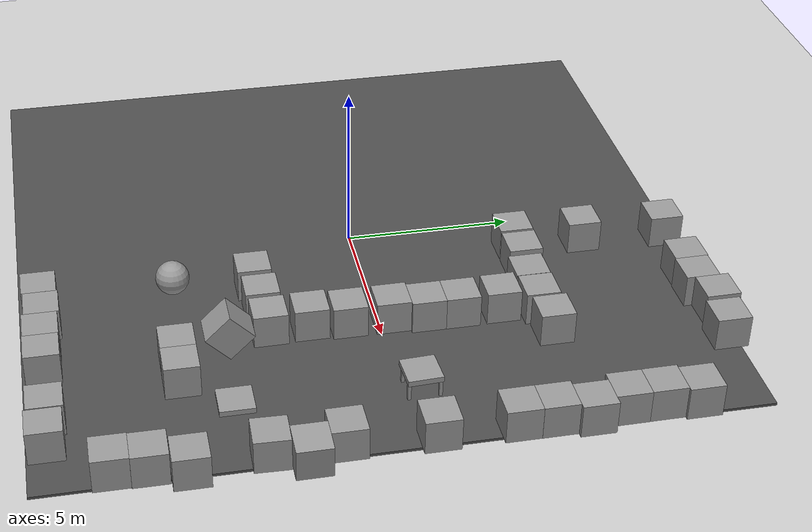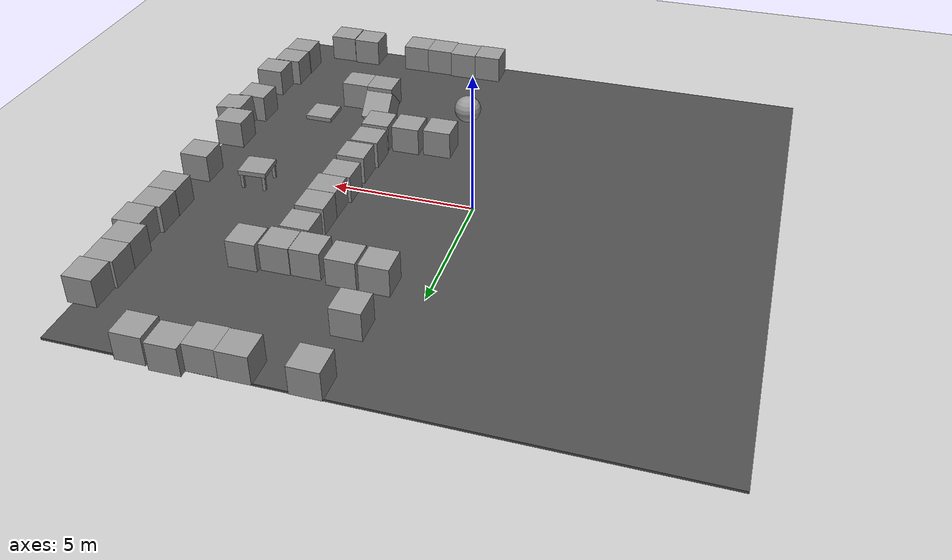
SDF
<sdf version="1.6">
 <world name="default">
  <model name="ground_plane">
   <static>1</static>
   <link name="link">
    <collision name="collision">
     <geometry><plane><normal>0 0 1</normal><size>100 100</size></plane></geometry>
     <surface><friction><ode><mu>100</mu><mu2>50</mu2></ode></friction></surface>
    </collision>
    <visual name="visual">
     <cast_shadows>0</cast_shadows>
     <geometry><plane><normal>0 0 1</normal><size>100 100</size></plane></geometry>
     <material>
      <script><uri>file://media/materials/scripts/gazebo.material</uri><name>Gazebo/Grey</name></script>
     </material>
    </visual>
   </link>
  </model>
  <model name="asphalt_plane">
   <static>1</static>
   <link name="link">
    <collision name="collision"><geometry><box><size>20 20 0.1</size></box></geometry></collision>
    <visual name="visual">
     <cast_shadows>0</cast_shadows>
     <geometry><box><size>20 20 0.1</size></box></geometry>
     <material>
      <script>
       <uri>model://asphalt_plane/materials/scripts</uri>
       <uri>model://asphalt_plane/materials/textures</uri>
       <name>vrc/asphalt</name>
      </script>
     </material>
    </visual>
   </link>
   <pose>0.023839 -0.146036 0 0 -0 0</pose>
  </model>
  <model name="unit_box_1_clone_15">
   <pose>2.09212 -9.51207 0.549996 9e-06 -0 0.000929</pose>
   <link name="link">
    <inertial>
     <mass>1</mass>
     <inertia>
      <ixx>0.166667</ixx>
      <ixy>0</ixy>
      <ixz>0</ixz>
      <iyy>0.166667</iyy>
      <iyz>0</iyz>
      <izz>0.166667</izz>
     </inertia>
    </inertial>
    <collision name="collision"><geometry><box><size>1 1 1</size></box></geometry></collision>
    <visual name="visual">
     <geometry><box><size>1 1 1</size></box></geometry>
     <material>
      <script><name>Gazebo/Grey</name><uri>file://media/materials/scripts/gazebo.material</uri></script>
     </material>
    </visual>
   </link>
  </model>
  <model name="unit_box_1_clone_16">
   <pose>3.09306 -9.47292 0.549996 9e-06 -0 -0.000398</pose>
   <link name="link">
    <inertial>
     <mass>1</mass>
     <inertia>
      <ixx>0.166667</ixx>
      <ixy>0</ixy>
      <ixz>0</ixz>
      <iyy>0.166667</iyy>
      <iyz>0</iyz>
      <izz>0.166667</izz>
     </inertia>
    </inertial>
    <collision name="collision"><geometry><box><size>1 1 1</size></box></geometry></collision>
    <visual name="visual">
     <geometry><box><size>1 1 1</size></box></geometry>
     <material>
      <script><name>Gazebo/Grey</name><uri>file://media/materials/scripts/gazebo.material</uri></script>
     </material>
    </visual>
   </link>
  </model>
  <model name="unit_box_1_clone_17">
   <pose>4.09327 -9.53323 0.549996 9e-06 -0 -0.000767</pose>
   <link name="link">
    <inertial>
     <mass>1</mass>
     <inertia>
      <ixx>0.166667</ixx>
      <ixy>0</ixy>
      <ixz>0</ixz>
      <iyy>0.166667</iyy>
      <iyz>0</iyz>
      <izz>0.166667</izz>
     </inertia>
    </inertial>
    <collision name="collision"><geometry><box><size>1 1 1</size></box></geometry></collision>
    <visual name="visual">
     <geometry><box><size>1 1 1</size></box></geometry>
     <material>
      <script><name>Gazebo/Grey</name><uri>file://media/materials/scripts/gazebo.material</uri></script>
     </material>
    </visual>
   </link>
  </model>
  <model name="unit_box_1_clone_18">
   <pose>5.09332 -9.54521 0.549996 9e-06 -0 -0.000875</pose>
   <link name="link">
    <inertial>
     <mass>1</mass>
     <inertia>
      <ixx>0.166667</ixx>
      <ixy>0</ixy>
      <ixz>0</ixz>
      <iyy>0.166667</iyy>
      <iyz>0</iyz>
      <izz>0.166667</izz>
     </inertia>
    </inertial>
    <collision name="collision"><geometry><box><size>1 1 1</size></box></geometry></collision>
    <visual name="visual">
     <geometry><box><size>1 1 1</size></box></geometry>
     <material>
      <script><name>Gazebo/Grey</name><uri>file://media/materials/scripts/gazebo.material</uri></script>
     </material>
    </visual>
   </link>
  </model>
  <model name="unit_box_1_clone_19">
   <pose>7.27243 -9.54386 0.549996 9e-06 -0 6.2e-05</pose>
   <link name="link">
    <inertial>
     <mass>1</mass>
     <inertia>
      <ixx>0.166667</ixx>
      <ixy>0</ixy>
      <ixz>0</ixz>
      <iyy>0.166667</iyy>
      <iyz>0</iyz>
      <izz>0.166667</izz>
     </inertia>
    </inertial>
    <collision name="collision"><geometry><box><size>1 1 1</size></box></geometry></collision>
    <visual name="visual">
     <geometry><box><size>1 1 1</size></box></geometry>
     <material>
      <script><name>Gazebo/Grey</name><uri>file://media/materials/scripts/gazebo.material</uri></script>
     </material>
    </visual>
   </link>
  </model>
  <model name="unit_box_1_clone_20">
   <pose>8.30474 -9.59831 0.549996 9e-06 -0 6.2e-05</pose>
   <link name="link">
    <inertial>
     <mass>1</mass>
     <inertia>
      <ixx>0.166667</ixx>
      <ixy>0</ixy>
      <ixz>0</ixz>
      <iyy>0.166667</iyy>
      <iyz>0</iyz>
      <izz>0.166667</izz>
     </inertia>
    </inertial>
    <collision name="collision"><geometry><box><size>1 1 1</size></box></geometry></collision>
    <visual name="visual">
     <geometry><box><size>1 1 1</size></box></geometry>
     <material>
      <script><name>Gazebo/Grey</name><uri>file://media/materials/scripts/gazebo.material</uri></script>
     </material>
    </visual>
   </link>
  </model>
  <model name="unit_box_1_clone_21">
   <pose>9.65896 -8.02131 0.55 0 0 -0.004066</pose>
   <link name="link">
    <inertial>
     <mass>1</mass>
     <inertia>
      <ixx>0.166667</ixx>
      <ixy>0</ixy>
      <ixz>0</ixz>
      <iyy>0.166667</iyy>
      <iyz>0</iyz>
      <izz>0.166667</izz>
     </inertia>
    </inertial>
    <collision name="collision"><geometry><box><size>1 1 1</size></box></geometry></collision>
    <visual name="visual">
     <geometry><box><size>1 1 1</size></box></geometry>
     <material>
      <script><name>Gazebo/Grey</name><uri>file://media/materials/scripts/gazebo.material</uri></script>
     </material>
    </visual>
   </link>
  </model>
  <model name="unit_box_1_clone_22">
   <pose>9.69096 -7.0214 0.549996 0 9e-06 -0.004069</pose>
   <link name="link">
    <inertial>
     <mass>1</mass>
     <inertia>
      <ixx>0.166667</ixx>
      <ixy>0</ixy>
      <ixz>0</ixz>
      <iyy>0.166667</iyy>
      <iyz>0</iyz>
      <izz>0.166667</izz>
     </inertia>
    </inertial>
    <collision name="collision"><geometry><box><size>1 1 1</size></box></geometry></collision>
    <visual name="visual">
     <geometry><box><size>1 1 1</size></box></geometry>
     <material>
      <script><name>Gazebo/Grey</name><uri>file://media/materials/scripts/gazebo.material</uri></script>
     </material>
    </visual>
   </link>
  </model>
  <model name="unit_box_1_clone_23">
   <pose>10 -6 0.549999 2e-06 -0 -1.1e-05</pose>
   <link name="link">
    <inertial>
     <mass>1</mass>
     <inertia>
      <ixx>0.166667</ixx>
      <ixy>0</ixy>
      <ixz>0</ixz>
      <iyy>0.166667</iyy>
      <iyz>0</iyz>
      <izz>0.166667</izz>
     </inertia>
    </inertial>
    <collision name="collision"><geometry><box><size>1 1 1</size></box></geometry></collision>
    <visual name="visual">
     <geometry><box><size>1 1 1</size></box></geometry>
     <material>
      <script><name>Gazebo/Grey</name><uri>file://media/materials/scripts/gazebo.material</uri></script>
     </material>
    </visual>
   </link>
  </model>
  <model name="unit_box_1_clone_24">
   <pose>9.71569 -3.89853 0.55 0 0 -0.031692</pose>
   <link name="link">
    <inertial>
     <mass>1</mass>
     <inertia>
      <ixx>0.166667</ixx>
      <ixy>0</ixy>
      <ixz>0</ixz>
      <iyy>0.166667</iyy>
      <iyz>0</iyz>
      <izz>0.166667</izz>
     </inertia>
    </inertial>
    <collision name="collision"><geometry><box><size>1 1 1</size></box></geometry></collision>
    <visual name="visual">
     <geometry><box><size>1 1 1</size></box></geometry>
     <material>
      <script><name>Gazebo/Grey</name><uri>file://media/materials/scripts/gazebo.material</uri></script>
     </material>
    </visual>
   </link>
  </model>
  <model name="unit_box_1_clone_25">
   <pose>10.1525 -2.89312 0.540837 0.000252 0.085144 0.002965</pose>
   <link name="link">
    <inertial>
     <mass>1</mass>
     <inertia>
      <ixx>0.166667</ixx>
      <ixy>0</ixy>
      <ixz>0</ixz>
      <iyy>0.166667</iyy>
      <iyz>0</iyz>
      <izz>0.166667</izz>
     </inertia>
    </inertial>
    <collision name="collision"><geometry><box><size>1 1 1</size></box></geometry></collision>
    <visual name="visual">
     <geometry><box><size>1 1 1</size></box></geometry>
     <material>
      <script><name>Gazebo/Grey</name><uri>file://media/materials/scripts/gazebo.material</uri></script>
     </material>
    </visual>
   </link>
  </model>
  <model name="unit_box_1_clone_26">
   <pose>9.68456 -1.89437 0.549999 -2e-06 3e-06 0.002944</pose>
   <link name="link">
    <inertial>
     <mass>1</mass>
     <inertia>
      <ixx>0.166667</ixx>
      <ixy>0</ixy>
      <ixz>0</ixz>
      <iyy>0.166667</iyy>
      <iyz>0</iyz>
      <izz>0.166667</izz>
     </inertia>
    </inertial>
    <collision name="collision"><geometry><box><size>1 1 1</size></box></geometry></collision>
    <visual name="visual">
     <geometry><box><size>1 1 1</size></box></geometry>
     <material>
      <script><name>Gazebo/Grey</name><uri>file://media/materials/scripts/gazebo.material</uri></script>
     </material>
    </visual>
   </link>
  </model>
  <model name="unit_box_1_clone_27">
   <pose>9.76856 0.548242 0.55 0 -0 3.5e-05</pose>
   <link name="link">
    <inertial>
     <mass>1</mass>
     <inertia>
      <ixx>0.166667</ixx>
      <ixy>0</ixy>
      <ixz>0</ixz>
      <iyy>0.166667</iyy>
      <iyz>0</iyz>
      <izz>0.166667</izz>
     </inertia>
    </inertial>
    <collision name="collision"><geometry><box><size>1 1 1</size></box></geometry></collision>
    <visual name="visual">
     <geometry><box><size>1 1 1</size></box></geometry>
     <material>
      <script><name>Gazebo/Grey</name><uri>file://media/materials/scripts/gazebo.material</uri></script>
     </material>
    </visual>
   </link>
  </model>
  <model name="unit_box_1_clone_28">
   <pose>9.74804 2.72075 0.549994 -4e-06 8e-06 0.004111</pose>
   <link name="link">
    <inertial>
     <mass>1</mass>
     <inertia>
      <ixx>0.166667</ixx>
      <ixy>0</ixy>
      <ixz>0</ixz>
      <iyy>0.166667</iyy>
      <iyz>0</iyz>
      <izz>0.166667</izz>
     </inertia>
    </inertial>
    <collision name="collision"><geometry><box><size>1 1 1</size></box></geometry></collision>
    <visual name="visual">
     <geometry><box><size>1 1 1</size></box></geometry>
     <material>
      <script><name>Gazebo/Grey</name><uri>file://media/materials/scripts/gazebo.material</uri></script>
     </material>
    </visual>
   </link>
  </model>
  <model name="unit_box_1_clone_29">
   <pose>9.74822 3.72077 0.549994 -4e-06 8e-06 0.004107</pose>
   <link name="link">
    <inertial>
     <mass>1</mass>
     <inertia>
      <ixx>0.166667</ixx>
      <ixy>0</ixy>
      <ixz>0</ixz>
      <iyy>0.166667</iyy>
      <iyz>0</iyz>
      <izz>0.166667</izz>
     </inertia>
    </inertial>
    <collision name="collision"><geometry><box><size>1 1 1</size></box></geometry></collision>
    <visual name="visual">
     <geometry><box><size>1 1 1</size></box></geometry>
     <material>
      <script><name>Gazebo/Grey</name><uri>file://media/materials/scripts/gazebo.material</uri></script>
     </material>
    </visual>
   </link>
  </model>
  <model name="unit_box_1_clone_30">
   <pose>9.88777 4.72138 0.549997 5e-06 -1e-06 0.004127</pose>
   <link name="link">
    <inertial>
     <mass>1</mass>
     <inertia>
      <ixx>0.166667</ixx>
      <ixy>0</ixy>
      <ixz>0</ixz>
      <iyy>0.166667</iyy>
      <iyz>0</iyz>
      <izz>0.166667</izz>
     </inertia>
    </inertial>
    <collision name="collision"><geometry><box><size>1 1 1</size></box></geometry></collision>
    <visual name="visual">
     <geometry><box><size>1 1 1</size></box></geometry>
     <material>
      <script><name>Gazebo/Grey</name><uri>file://media/materials/scripts/gazebo.material</uri></script>
     </material>
    </visual>
   </link>
  </model>
  <model name="unit_box_1_clone_31">
   <pose>9.63354 5.72049 0.55 0 -0 0.004242</pose>
   <link name="link">
    <inertial>
     <mass>1</mass>
     <inertia>
      <ixx>0.166667</ixx>
      <ixy>0</ixy>
      <ixz>0</ixz>
      <iyy>0.166667</iyy>
      <iyz>0</iyz>
      <izz>0.166667</izz>
     </inertia>
    </inertial>
    <collision name="collision"><geometry><box><size>1 1 1</size></box></geometry></collision>
    <visual name="visual">
     <geometry><box><size>1 1 1</size></box></geometry>
     <material>
      <script><name>Gazebo/Grey</name><uri>file://media/materials/scripts/gazebo.material</uri></script>
     </material>
    </visual>
   </link>
  </model>
  <model name="unit_box_1_clone_32">
   <pose>9.62456 6.72048 0.549996 0 -9e-06 0.004241</pose>
   <link name="link">
    <inertial>
     <mass>1</mass>
     <inertia>
      <ixx>0.166667</ixx>
      <ixy>0</ixy>
      <ixz>0</ixz>
      <iyy>0.166667</iyy>
      <iyz>0</iyz>
      <izz>0.166667</izz>
     </inertia>
    </inertial>
    <collision name="collision"><geometry><box><size>1 1 1</size></box></geometry></collision>
    <visual name="visual">
     <geometry><box><size>1 1 1</size></box></geometry>
     <material>
      <script><name>Gazebo/Grey</name><uri>file://media/materials/scripts/gazebo.material</uri></script>
     </material>
    </visual>
   </link>
  </model>
  <model name="unit_box_1_clone_33">
   <pose>9.71779 7.72092 0.549996 0 8e-06 0.004295</pose>
   <link name="link">
    <inertial>
     <mass>1</mass>
     <inertia>
      <ixx>0.166667</ixx>
      <ixy>0</ixy>
      <ixz>0</ixz>
      <iyy>0.166667</iyy>
      <iyz>0</iyz>
      <izz>0.166667</izz>
     </inertia>
    </inertial>
    <collision name="collision"><geometry><box><size>1 1 1</size></box></geometry></collision>
    <visual name="visual">
     <geometry><box><size>1 1 1</size></box></geometry>
     <material>
      <script><name>Gazebo/Grey</name><uri>file://media/materials/scripts/gazebo.material</uri></script>
     </material>
    </visual>
   </link>
  </model>
  <model name="unit_box_1_clone_34">
   <pose>6.9999 9.55273 0.549999 0 2e-06 0.000429</pose>
   <link name="link">
    <inertial>
     <mass>1</mass>
     <inertia>
      <ixx>0.166667</ixx>
      <ixy>0</ixy>
      <ixz>0</ixz>
      <iyy>0.166667</iyy>
      <iyz>0</iyz>
      <izz>0.166667</izz>
     </inertia>
    </inertial>
    <collision name="collision"><geometry><box><size>1 1 1</size></box></geometry></collision>
    <visual name="visual">
     <geometry><box><size>1 1 1</size></box></geometry>
     <material>
      <script><name>Gazebo/Grey</name><uri>file://media/materials/scripts/gazebo.material</uri></script>
     </material>
    </visual>
   </link>
  </model>
  <model name="unit_box_1_clone_35">
   <pose>5.84877 9.67114 0.549996 3e-06 7e-06 0.011102</pose>
   <link name="link">
    <inertial>
     <mass>1</mass>
     <inertia>
      <ixx>0.166667</ixx>
      <ixy>0</ixy>
      <ixz>0</ixz>
      <iyy>0.166667</iyy>
      <iyz>0</iyz>
      <izz>0.166667</izz>
     </inertia>
    </inertial>
    <collision name="collision"><geometry><box><size>1 1 1</size></box></geometry></collision>
    <visual name="visual">
     <geometry><box><size>1 1 1</size></box></geometry>
     <material>
      <script><name>Gazebo/Grey</name><uri>file://media/materials/scripts/gazebo.material</uri></script>
     </material>
    </visual>
   </link>
  </model>
  <model name="unit_box_1_clone_36">
   <pose>4.85147 9.42217 0.55 0 -0 0.011103</pose>
   <link name="link">
    <inertial>
     <mass>1</mass>
     <inertia>
      <ixx>0.166667</ixx>
      <ixy>0</ixy>
      <ixz>0</ixz>
      <iyy>0.166667</iyy>
      <iyz>0</iyz>
      <izz>0.166667</izz>
     </inertia>
    </inertial>
    <collision name="collision"><geometry><box><size>1 1 1</size></box></geometry></collision>
    <visual name="visual">
     <geometry><box><size>1 1 1</size></box></geometry>
     <material>
      <script><name>Gazebo/Grey</name><uri>file://media/materials/scripts/gazebo.material</uri></script>
     </material>
    </visual>
   </link>
  </model>
  <model name="unit_box_1_clone_37">
   <pose>3.85126 9.43365 0.549988 1e-06 6e-06 0.011059</pose>
   <link name="link">
    <inertial>
     <mass>1</mass>
     <inertia>
      <ixx>0.166667</ixx>
      <ixy>0</ixy>
      <ixz>0</ixz>
      <iyy>0.166667</iyy>
      <iyz>0</iyz>
      <izz>0.166667</izz>
     </inertia>
    </inertial>
    <collision name="collision"><geometry><box><size>1 1 1</size></box></geometry></collision>
    <visual name="visual">
     <geometry><box><size>1 1 1</size></box></geometry>
     <material>
      <script><name>Gazebo/Grey</name><uri>file://media/materials/scripts/gazebo.material</uri></script>
     </material>
    </visual>
   </link>
  </model>
  <model name="unit_box_1_clone_38">
   <pose>1.74504 9.44139 0.549997 -7e-06 2e-06 -0.000691</pose>
   <link name="link">
    <inertial>
     <mass>1</mass>
     <inertia>
      <ixx>0.166667</ixx>
      <ixy>0</ixy>
      <ixz>0</ixz>
      <iyy>0.166667</iyy>
      <iyz>0</iyz>
      <izz>0.166667</izz>
     </inertia>
    </inertial>
    <collision name="collision"><geometry><box><size>1 1 1</size></box></geometry></collision>
    <visual name="visual">
     <geometry><box><size>1 1 1</size></box></geometry>
     <material>
      <script><name>Gazebo/Grey</name><uri>file://media/materials/scripts/gazebo.material</uri></script>
     </material>
    </visual>
   </link>
  </model>
  <model name="unit_sphere_0">
   <pose>1.87814 -5.638 0.55 0 -0 0</pose>
   <link name="link">
    <inertial>
     <mass>1</mass>
     <inertia><ixx>0.1</ixx><ixy>0</ixy><ixz>0</ixz><iyy>0.1</iyy><iyz>0</iyz><izz>0.1</izz></inertia>
    </inertial>
    <collision name="collision"><geometry><sphere><radius>0.5</radius></sphere></geometry></collision>
    <visual name="visual">
     <geometry><sphere><radius>0.5</radius></sphere></geometry>
     <material>
      <script><name>Gazebo/Grey</name><uri>file://media/materials/scripts/gazebo.material</uri></script>
     </material>
    </visual>
   </link>
  </model>
  <model name="unit_box_1_clone_62">
   <pose>5.91435 4.77864 0.55 0 -0 2.7e-05</pose>
   <link name="link">
    <inertial>
     <mass>1</mass>
     <inertia>
      <ixx>0.166667</ixx>
      <ixy>0</ixy>
      <ixz>0</ixz>
      <iyy>0.166667</iyy>
      <iyz>0</iyz>
      <izz>0.166667</izz>
     </inertia>
    </inertial>
    <collision name="collision"><geometry><box><size>1 1 1</size></box></geometry></collision>
    <visual name="visual">
     <geometry><box><size>1 1 1</size></box></geometry>
     <material>
      <script><name>Gazebo/Grey</name><uri>file://media/materials/scripts/gazebo.material</uri></script>
     </material>
    </visual>
   </link>
  </model>
  <model name="unit_box_1_clone_63">
   <pose>4.85312 4.64949 0.55 0 -0 2.6e-05</pose>
   <link name="link">
    <inertial>
     <mass>1</mass>
     <inertia>
      <ixx>0.166667</ixx>
      <ixy>0</ixy>
      <ixz>0</ixz>
      <iyy>0.166667</iyy>
      <iyz>0</iyz>
      <izz>0.166667</izz>
     </inertia>
    </inertial>
    <collision name="collision"><geometry><box><size>1 1 1</size></box></geometry></collision>
    <visual name="visual">
     <geometry><box><size>1 1 1</size></box></geometry>
     <material>
      <script><name>Gazebo/Grey</name><uri>file://media/materials/scripts/gazebo.material</uri></script>
     </material>
    </visual>
   </link>
  </model>
  <model name="unit_box_1_clone_64">
   <pose>3.84504 4.62631 0.55 0 -0 2.6e-05</pose>
   <link name="link">
    <inertial>
     <mass>1</mass>
     <inertia>
      <ixx>0.166667</ixx>
      <ixy>0</ixy>
      <ixz>0</ixz>
      <iyy>0.166667</iyy>
      <iyz>0</iyz>
      <izz>0.166667</izz>
     </inertia>
    </inertial>
    <collision name="collision"><geometry><box><size>1 1 1</size></box></geometry></collision>
    <visual name="visual">
     <geometry><box><size>1 1 1</size></box></geometry>
     <material>
      <script><name>Gazebo/Grey</name><uri>file://media/materials/scripts/gazebo.material</uri></script>
     </material>
    </visual>
   </link>
  </model>
  <model name="unit_box_1_clone_65">
   <pose>2.62501 4.76337 0.55 0 -0 2.5e-05</pose>
   <link name="link">
    <inertial>
     <mass>1</mass>
     <inertia>
      <ixx>0.166667</ixx>
      <ixy>0</ixy>
      <ixz>0</ixz>
      <iyy>0.166667</iyy>
      <iyz>0</iyz>
      <izz>0.166667</izz>
     </inertia>
    </inertial>
    <collision name="collision"><geometry><box><size>1 1 1</size></box></geometry></collision>
    <visual name="visual">
     <geometry><box><size>1 1 1</size></box></geometry>
     <material>
      <script><name>Gazebo/Grey</name><uri>file://media/materials/scripts/gazebo.material</uri></script>
     </material>
    </visual>
   </link>
  </model>
  <model name="unit_box_1_clone_66">
   <pose>1.53689 4.76735 0.55 0 -0 2.5e-05</pose>
   <link name="link">
    <inertial>
     <mass>1</mass>
     <inertia>
      <ixx>0.166667</ixx>
      <ixy>0</ixy>
      <ixz>0</ixz>
      <iyy>0.166667</iyy>
      <iyz>0</iyz>
      <izz>0.166667</izz>
     </inertia>
    </inertial>
    <collision name="collision"><geometry><box><size>1 1 1</size></box></geometry></collision>
    <visual name="visual">
     <geometry><box><size>1 1 1</size></box></geometry>
     <material>
      <script><name>Gazebo/Grey</name><uri>file://media/materials/scripts/gazebo.material</uri></script>
     </material>
    </visual>
   </link>
  </model>
  <model name="unit_box_1_clone_68">
   <pose>1.59614 6.89211 0.55 0 -0 2.3e-05</pose>
   <link name="link">
    <inertial>
     <mass>1</mass>
     <inertia>
      <ixx>0.166667</ixx>
      <ixy>0</ixy>
      <ixz>0</ixz>
      <iyy>0.166667</iyy>
      <iyz>0</iyz>
      <izz>0.166667</izz>
     </inertia>
    </inertial>
    <collision name="collision"><geometry><box><size>1 1 1</size></box></geometry></collision>
    <visual name="visual">
     <geometry><box><size>1 1 1</size></box></geometry>
     <material>
      <script><name>Gazebo/Grey</name><uri>file://media/materials/scripts/gazebo.material</uri></script>
     </material>
    </visual>
   </link>
  </model>
  <model name="unit_box_1_clone_71">
   <pose>4.63758 3.56187 0.55 0 -0 2.1e-05</pose>
   <link name="link">
    <inertial>
     <mass>1</mass>
     <inertia>
      <ixx>0.166667</ixx>
      <ixy>0</ixy>
      <ixz>0</ixz>
      <iyy>0.166667</iyy>
      <iyz>0</iyz>
      <izz>0.166667</izz>
     </inertia>
    </inertial>
    <collision name="collision"><geometry><box><size>1 1 1</size></box></geometry></collision>
    <visual name="visual">
     <geometry><box><size>1 1 1</size></box></geometry>
     <material>
      <script><name>Gazebo/Grey</name><uri>file://media/materials/scripts/gazebo.material</uri></script>
     </material>
    </visual>
   </link>
  </model>
  <model name="unit_box_1_clone_72">
   <pose>4.66043 2.35908 0.55 0 0 -0.001526</pose>
   <link name="link">
    <inertial>
     <mass>1</mass>
     <inertia>
      <ixx>0.166667</ixx>
      <ixy>0</ixy>
      <ixz>0</ixz>
      <iyy>0.166667</iyy>
      <iyz>0</iyz>
      <izz>0.166667</izz>
     </inertia>
    </inertial>
    <collision name="collision"><geometry><box><size>1 1 1</size></box></geometry></collision>
    <visual name="visual">
     <geometry><box><size>1 1 1</size></box></geometry>
     <material>
      <script><name>Gazebo/Grey</name><uri>file://media/materials/scripts/gazebo.material</uri></script>
     </material>
    </visual>
   </link>
  </model>
  <model name="unit_box_1_clone_73">
   <pose>4.65837 1.35902 0.55 0 0 -0.001588</pose>
   <link name="link">
    <inertial>
     <mass>1</mass>
     <inertia>
      <ixx>0.166667</ixx>
      <ixy>0</ixy>
      <ixz>0</ixz>
      <iyy>0.166667</iyy>
      <iyz>0</iyz>
      <izz>0.166667</izz>
     </inertia>
    </inertial>
    <collision name="collision"><geometry><box><size>1 1 1</size></box></geometry></collision>
    <visual name="visual">
     <geometry><box><size>1 1 1</size></box></geometry>
     <material>
      <script><name>Gazebo/Grey</name><uri>file://media/materials/scripts/gazebo.material</uri></script>
     </material>
    </visual>
   </link>
  </model>
  <model name="unit_box_1_clone_74">
   <pose>4.54719 0.359086 0.55 0 0 -0.001655</pose>
   <link name="link">
    <inertial>
     <mass>1</mass>
     <inertia>
      <ixx>0.166667</ixx>
      <ixy>0</ixy>
      <ixz>0</ixz>
      <iyy>0.166667</iyy>
      <iyz>0</iyz>
      <izz>0.166667</izz>
     </inertia>
    </inertial>
    <collision name="collision"><geometry><box><size>1 1 1</size></box></geometry></collision>
    <visual name="visual">
     <geometry><box><size>1 1 1</size></box></geometry>
     <material>
      <script><name>Gazebo/Grey</name><uri>file://media/materials/scripts/gazebo.material</uri></script>
     </material>
    </visual>
   </link>
  </model>
  <model name="unit_box_1_clone_75">
   <pose>4.54426 -0.895932 0.55 0 -0 1.9e-05</pose>
   <link name="link">
    <inertial>
     <mass>1</mass>
     <inertia>
      <ixx>0.166667</ixx>
      <ixy>0</ixy>
      <ixz>0</ixz>
      <iyy>0.166667</iyy>
      <iyz>0</iyz>
      <izz>0.166667</izz>
     </inertia>
    </inertial>
    <collision name="collision"><geometry><box><size>1 1 1</size></box></geometry></collision>
    <visual name="visual">
     <geometry><box><size>1 1 1</size></box></geometry>
     <material>
      <script><name>Gazebo/Grey</name><uri>file://media/materials/scripts/gazebo.material</uri></script>
     </material>
    </visual>
   </link>
  </model>
  <model name="unit_box_1_clone_76">
   <pose>4.46143 -1.98336 0.55 0 -0 2.2e-05</pose>
   <link name="link">
    <inertial>
     <mass>1</mass>
     <inertia>
      <ixx>0.166667</ixx>
      <ixy>0</ixy>
      <ixz>0</ixz>
      <iyy>0.166667</iyy>
      <iyz>0</iyz>
      <izz>0.166667</izz>
     </inertia>
    </inertial>
    <collision name="collision"><geometry><box><size>1 1 1</size></box></geometry></collision>
    <visual name="visual">
     <geometry><box><size>1 1 1</size></box></geometry>
     <material>
      <script><name>Gazebo/Grey</name><uri>file://media/materials/scripts/gazebo.material</uri></script>
     </material>
    </visual>
   </link>
  </model>
  <model name="unit_box_1_clone_77">
   <pose>4.5061 -3.17171 0.55 0 -0 0.008831</pose>
   <link name="link">
    <inertial>
     <mass>1</mass>
     <inertia>
      <ixx>0.166667</ixx>
      <ixy>0</ixy>
      <ixz>0</ixz>
      <iyy>0.166667</iyy>
      <iyz>0</iyz>
      <izz>0.166667</izz>
     </inertia>
    </inertial>
    <collision name="collision"><geometry><box><size>1 1 1</size></box></geometry></collision>
    <visual name="visual">
     <geometry><box><size>1 1 1</size></box></geometry>
     <material>
      <script><name>Gazebo/Grey</name><uri>file://media/materials/scripts/gazebo.material</uri></script>
     </material>
    </visual>
   </link>
  </model>
  <model name="unit_box_1_clone_78">
   <pose>3.3705 -3.22744 0.549995 1e-05 -0 2.8e-05</pose>
   <link name="link">
    <inertial>
     <mass>1</mass>
     <inertia>
      <ixx>0.166667</ixx>
      <ixy>0</ixy>
      <ixz>0</ixz>
      <iyy>0.166667</iyy>
      <iyz>0</iyz>
      <izz>0.166667</izz>
     </inertia>
    </inertial>
    <collision name="collision"><geometry><box><size>1 1 1</size></box></geometry></collision>
    <visual name="visual">
     <geometry><box><size>1 1 1</size></box></geometry>
     <material>
      <script><name>Gazebo/Grey</name><uri>file://media/materials/scripts/gazebo.material</uri></script>
     </material>
    </visual>
   </link>
  </model>
  <model name="unit_box_1_clone_79">
   <pose>2.20333 -3.30436 0.549995 1e-05 -0 3e-05</pose>
   <link name="link">
    <inertial>
     <mass>1</mass>
     <inertia>
      <ixx>0.166667</ixx>
      <ixy>0</ixy>
      <ixz>0</ixz>
      <iyy>0.166667</iyy>
      <iyz>0</iyz>
      <izz>0.166667</izz>
     </inertia>
    </inertial>
    <collision name="collision"><geometry><box><size>1 1 1</size></box></geometry></collision>
    <visual name="visual">
     <geometry><box><size>1 1 1</size></box></geometry>
     <material>
      <script><name>Gazebo/Grey</name><uri>file://media/materials/scripts/gazebo.material</uri></script>
     </material>
    </visual>
   </link>
  </model>
  <model name="unit_box_1_clone_80">
   <pose>6.32771 -5.85913 0.549995 -1e-05 -0 -0.000102</pose>
   <link name="link">
    <inertial>
     <mass>1</mass>
     <inertia>
      <ixx>0.166667</ixx>
      <ixy>0</ixy>
      <ixz>0</ixz>
      <iyy>0.166667</iyy>
      <iyz>0</iyz>
      <izz>0.166667</izz>
     </inertia>
    </inertial>
    <collision name="collision"><geometry><box><size>1 1 1</size></box></geometry></collision>
    <visual name="visual">
     <geometry><box><size>1 1 1</size></box></geometry>
     <material>
      <script><name>Gazebo/Grey</name><uri>file://media/materials/scripts/gazebo.material</uri></script>
     </material>
    </visual>
   </link>
  </model>
  <model name="unit_box_1_clone_81">
   <pose>5.3277 -5.85715 0.549995 -1e-05 -0 -0.000102</pose>
   <link name="link">
    <inertial>
     <mass>1</mass>
     <inertia>
      <ixx>0.166667</ixx>
      <ixy>0</ixy>
      <ixz>0</ixz>
      <iyy>0.166667</iyy>
      <iyz>0</iyz>
      <izz>0.166667</izz>
     </inertia>
    </inertial>
    <collision name="collision"><geometry><box><size>1 1 1</size></box></geometry></collision>
    <visual name="visual">
     <geometry><box><size>1 1 1</size></box></geometry>
     <material>
      <script><name>Gazebo/Grey</name><uri>file://media/materials/scripts/gazebo.material</uri></script>
     </material>
    </visual>
   </link>
  </model>
  <model name="unit_box">
   <pose>4.91428 -4.37521 0.757039 0.771853 -6e-06 0.008871</pose>
   <link name="link">
    <inertial>
     <mass>1</mass>
     <inertia>
      <ixx>0.166667</ixx>
      <ixy>0</ixy>
      <ixz>0</ixz>
      <iyy>0.166667</iyy>
      <iyz>0</iyz>
      <izz>0.166667</izz>
     </inertia>
    </inertial>
    <collision name="collision"><geometry><box><size>1 1 1</size></box></geometry></collision>
    <visual name="visual">
     <geometry><box><size>1 1 1</size></box></geometry>
     <material>
      <script><name>Gazebo/Grey</name><uri>file://media/materials/scripts/gazebo.material</uri></script>
     </material>
    </visual>
   </link>
  </model>
  <model name="unit_box_4">
   <pose>7.325 -4.50586 0.131557 0 -0 0</pose>
   <link name="link">
    <inertial>
     <mass>1</mass>
     <inertia>
      <ixx>0.166667</ixx>
      <ixy>0</ixy>
      <ixz>0</ixz>
      <iyy>0.166667</iyy>
      <iyz>0</iyz>
      <izz>0.166667</izz>
     </inertia>
    </inertial>
    <collision name="collision"><geometry><box><size>1 1 0.163114</size></box></geometry></collision>
    <visual name="visual">
     <geometry><box><size>1 1 0.163114</size></box></geometry>
     <material>
      <script><name>Gazebo/Grey</name><uri>file://media/materials/scripts/gazebo.material</uri></script>
     </material>
    </visual>
   </link>
  </model>
  <model name="unit_box_5">
   <pose>7.23075 0.121012 0.311849 0.00028 -5.8e-05 0.046522</pose>
   <link name="link">
    <inertial>
     <mass>1</mass>
     <inertia>
      <ixx>0.166667</ixx>
      <ixy>0</ixy>
      <ixz>0</ixz>
      <iyy>0.166667</iyy>
      <iyz>0</iyz>
      <izz>0.166667</izz>
     </inertia>
    </inertial>
    <collision name="collision">
     <geometry><box><size>0.11406 0.0946138 0.523665</size></box></geometry>
    </collision>
    <visual name="visual">
     <geometry><box><size>0.11406 0.0946138 0.523665</size></box></geometry>
     <material>
      <script><name>Gazebo/Grey</name><uri>file://media/materials/scripts/gazebo.material</uri></script>
     </material>
    </visual>
   </link>
  </model>
  <model name="unit_box_5_clone">
   <pose>7.1977 0.978501 0.311833 1e-06 -1.2e-05 0.04636</pose>
   <link name="link">
    <inertial>
     <mass>1</mass>
     <inertia>
      <ixx>0.166667</ixx>
      <ixy>0</ixy>
      <ixz>0</ixz>
      <iyy>0.166667</iyy>
      <iyz>0</iyz>
      <izz>0.166667</izz>
     </inertia>
    </inertial>
    <collision name="collision"><geometry><box><size>0.11406 0.094614 0.523665</size></box></geometry></collision>
    <visual name="visual">
     <geometry><box><size>0.11406 0.094614 0.523665</size></box></geometry>
     <material>
      <script><name>Gazebo/Grey</name><uri>file://media/materials/scripts/gazebo.material</uri></script>
     </material>
    </visual>
   </link>
  </model>
  <model name="unit_box_5_clone_0">
   <pose>8.00282 0.127757 0.311832 -3e-06 0 0.039461</pose>
   <link name="link">
    <inertial>
     <mass>1</mass>
     <inertia>
      <ixx>0.166667</ixx>
      <ixy>0</ixy>
      <ixz>0</ixz>
      <iyy>0.166667</iyy>
      <iyz>0</iyz>
      <izz>0.166667</izz>
     </inertia>
    </inertial>
    <collision name="collision"><geometry><box><size>0.11406 0.094614 0.523665</size></box></geometry></collision>
    <visual name="visual">
     <geometry><box><size>0.11406 0.094614 0.523665</size></box></geometry>
     <material>
      <script><name>Gazebo/Grey</name><uri>file://media/materials/scripts/gazebo.material</uri></script>
     </material>
    </visual>
   </link>
  </model>
  <model name="unit_box_5_clone_1">
   <pose>7.98675 1.00763 0.311972 -0.003188 2e-06 -0.052864</pose>
   <link name="link">
    <inertial>
     <mass>1</mass>
     <inertia>
      <ixx>0.166667</ixx>
      <ixy>0</ixy>
      <ixz>0</ixz>
      <iyy>0.166667</iyy>
      <iyz>0</iyz>
      <izz>0.166667</izz>
     </inertia>
    </inertial>
    <collision name="collision"><geometry><box><size>0.11406 0.094614 0.523665</size></box></geometry></collision>
    <visual name="visual">
     <geometry><box><size>0.11406 0.094614 0.523665</size></box></geometry>
     <material>
      <script><name>Gazebo/Grey</name><uri>file://media/materials/scripts/gazebo.material</uri></script>
     </material>
    </visual>
   </link>
  </model>
  <model name="unit_box_6">
   <pose>7.62685 0.546981 0.656995 0.000272 -9.6e-05 0.051655</pose>
   <link name="link">
    <inertial>
     <mass>1</mass>
     <inertia>
      <ixx>0.166667</ixx>
      <ixy>0</ixy>
      <ixz>0</ixz>
      <iyy>0.166667</iyy>
      <iyz>0</iyz>
      <izz>0.166667</izz>
     </inertia>
    </inertial>
    <collision name="collision"><geometry><box><size>1 1 0.166342</size></box></geometry></collision>
    <visual name="visual">
     <geometry><box><size>1 1 0.166342</size></box></geometry>
     <material>
      <script><name>Gazebo/Grey</name><uri>file://media/materials/scripts/gazebo.material</uri></script>
     </material>
    </visual>
   </link>
  </model>
 </world>
</sdf>
